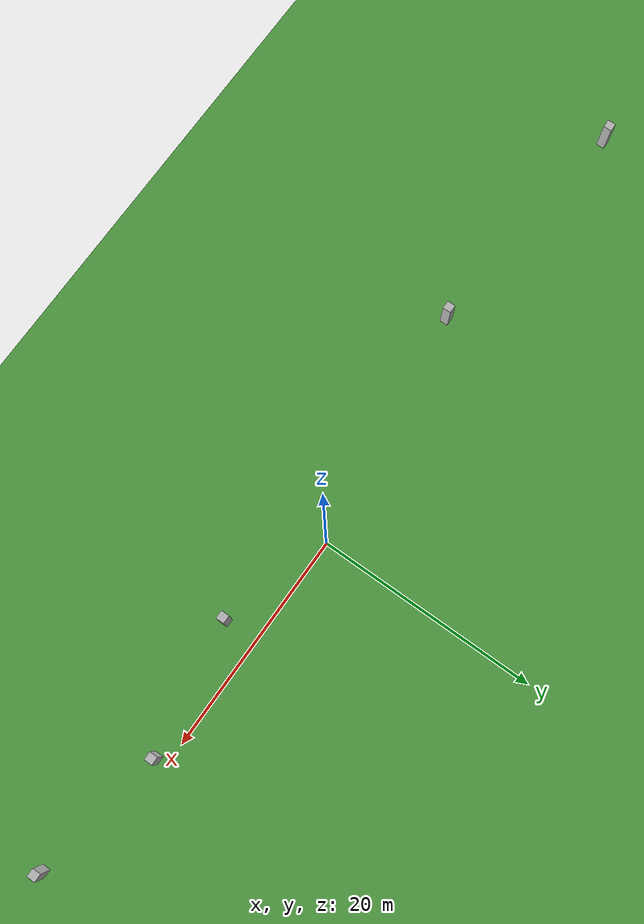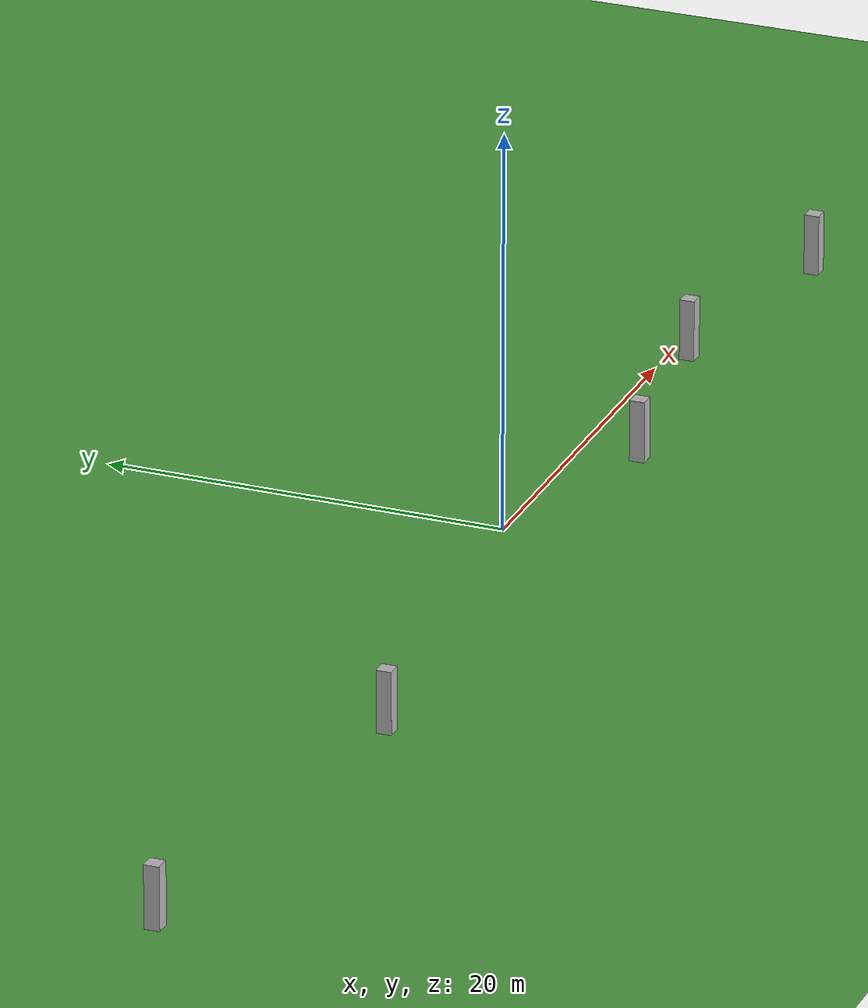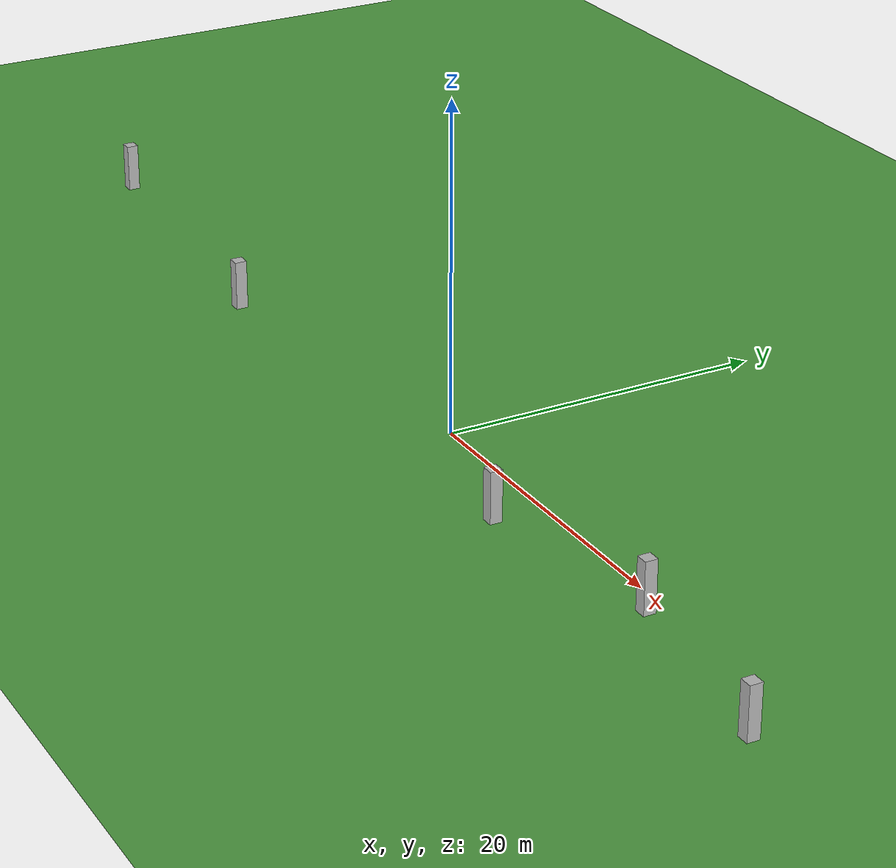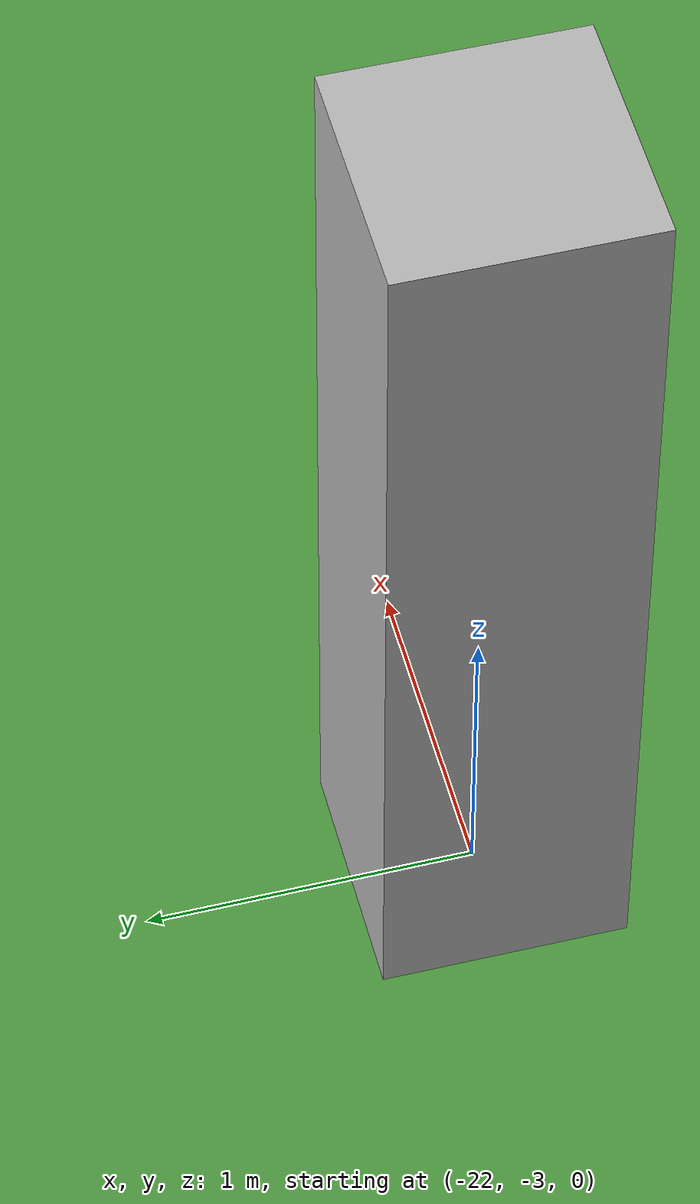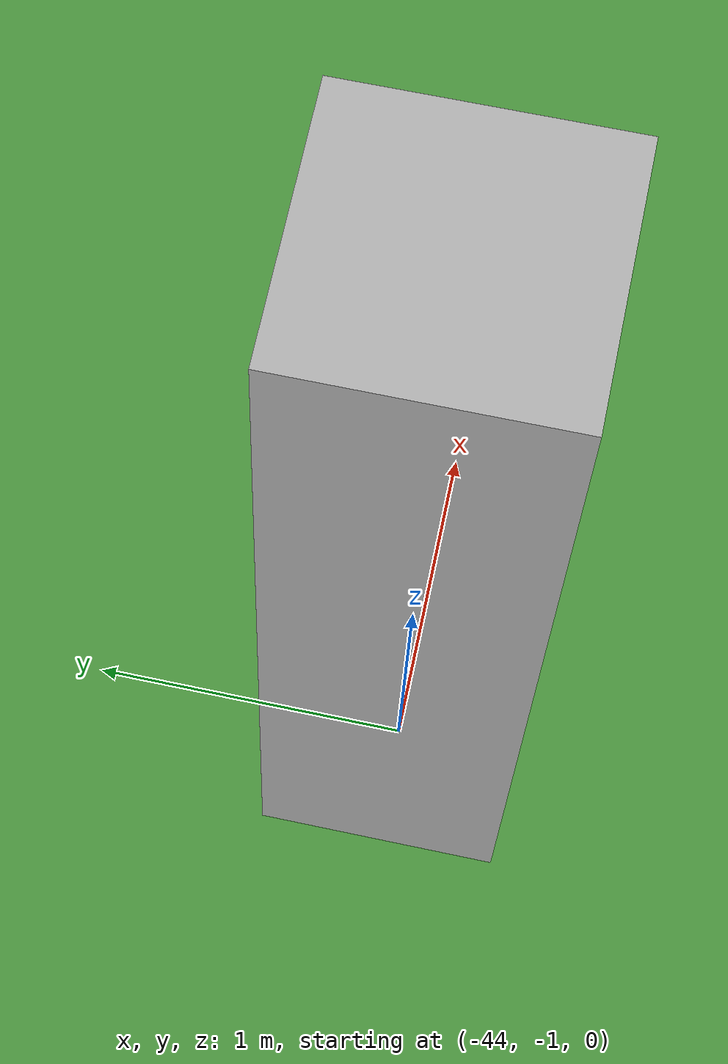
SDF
<sdf version="1.6">
 <world name="default">
  <light name="sun" type="directional">
   <pose>0 0 10 0 -0 0</pose>
   <diffuse>0.8 0.8 0.8 1</diffuse>
   <specular>0.2 0.2 0.2 1</specular>
   <attenuation>
    <range>1000</range>
    <constant>0.9</constant>
    <linear>0.01</linear>
    <quadratic>0.001</quadratic>
   </attenuation>
   <direction>-0.5 0.1 -0.9</direction>
   <spot><inner_angle>0</inner_angle><outer_angle>0</outer_angle><falloff>0</falloff></spot>
  </light>
  <gravity>0 0 -9.8</gravity>
  <magnetic_field>6e-06 2.3e-05 -4.2e-05</magnetic_field>
  <atmosphere type="adiabatic"/>
  <physics name="default_physics" default="0" type="ode">
   <max_step_size>0.001</max_step_size>
   <real_time_update_rate>1000</real_time_update_rate>
  </physics>
  <scene><ambient>0.4 0.4 0.4 1</ambient><background>0.7 0.7 0.7 1</background><shadows>1</shadows></scene>
  <spherical_coordinates>
   <surface_model>EARTH_WGS84</surface_model>
   <latitude_deg>0</latitude_deg>
   <longitude_deg>0</longitude_deg>
   <elevation>0</elevation>
   <heading_deg>0</heading_deg>
  </spherical_coordinates>
  <audio><device>default</device></audio>
  <model name="grassland">
   <static>1</static>
   <link name="link">
    <collision name="collision">
     <geometry><plane><normal>0 0 1</normal><size>500 500</size></plane></geometry>
     <surface><friction><ode><mu>100</mu><mu2>50</mu2></ode></friction></surface>
    </collision>
    <visual name="visual">
     <cast_shadows>0</cast_shadows>
     <geometry><plane><normal>0 0 1</normal><size>500 500</size></plane></geometry>
     <material>
      <script><uri>file://media/materials/scripts/gazebo.material</uri><name>Gazebo/Grass</name></script>
     </material>
    </visual>
   </link>
  </model>
  <include><uri>model://cylinder_obstacle</uri><name>obstacle 1</name><pose>10 -3 1.05 0 0 0</pose></include>
  <include><uri>model://cylinder_obstacle</uri><name>obstacle 2</name><pose>22 -1 1.05 0 0 0</pose></include>
  <include><uri>model://cylinder_obstacle</uri><name>obstacle 3</name><pose>34 -3 1.05 0 0 0</pose></include>
  <include><uri>model://cylinder_obstacle</uri><name>obstacle 4</name><pose>-22 -3 1.05 0 0 0</pose></include>
  <include><uri>model://cylinder_obstacle</uri><name>obstacle 6</name><pose>-44 -1 1.05 0 0 0</pose></include>
 </world>
</sdf>

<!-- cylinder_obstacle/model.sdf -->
<sdf version="1.4">
  <model name="cylinder_obstacle">
    <pose>0 0 0 0 0 0</pose>
    <static>true</static>
    <link name="link">
      <inertial>
        <mass>1.0</mass>
        <inertia> <!-- inertias are tricky to compute -->
          <!-- http://gazebosim.org/tutorials?tut=inertia&cat=build_robot -->
          <ixx>0.083</ixx>       <!-- for a box: ixx = 0.083 * mass * (y*y + z*z) -->
          <ixy>0.0</ixy>         <!-- for a box: ixy = 0 -->
          <ixz>0.0</ixz>         <!-- for a box: ixz = 0 -->
          <iyy>0.083</iyy>       <!-- for a box: iyy = 0.083 * mass * (x*x + z*z) -->
          <iyz>0.0</iyz>         <!-- for a box: iyz = 0 -->
          <izz>0.083</izz>       <!-- for a box: izz = 0.083 * mass * (x*x + y*y) -->
        </inertia>
      </inertial>
      <collision name="collision">
        <geometry>
          <box>
            <size>0.75 0.75 2</size>
          </box>
        </geometry>
      </collision>
      <visual name="visual">
        <geometry>
          <box>
            <size>0.75 0.75 4</size>
          </box>
        </geometry>
      </visual>
    </link>
  </model>
</sdf>
